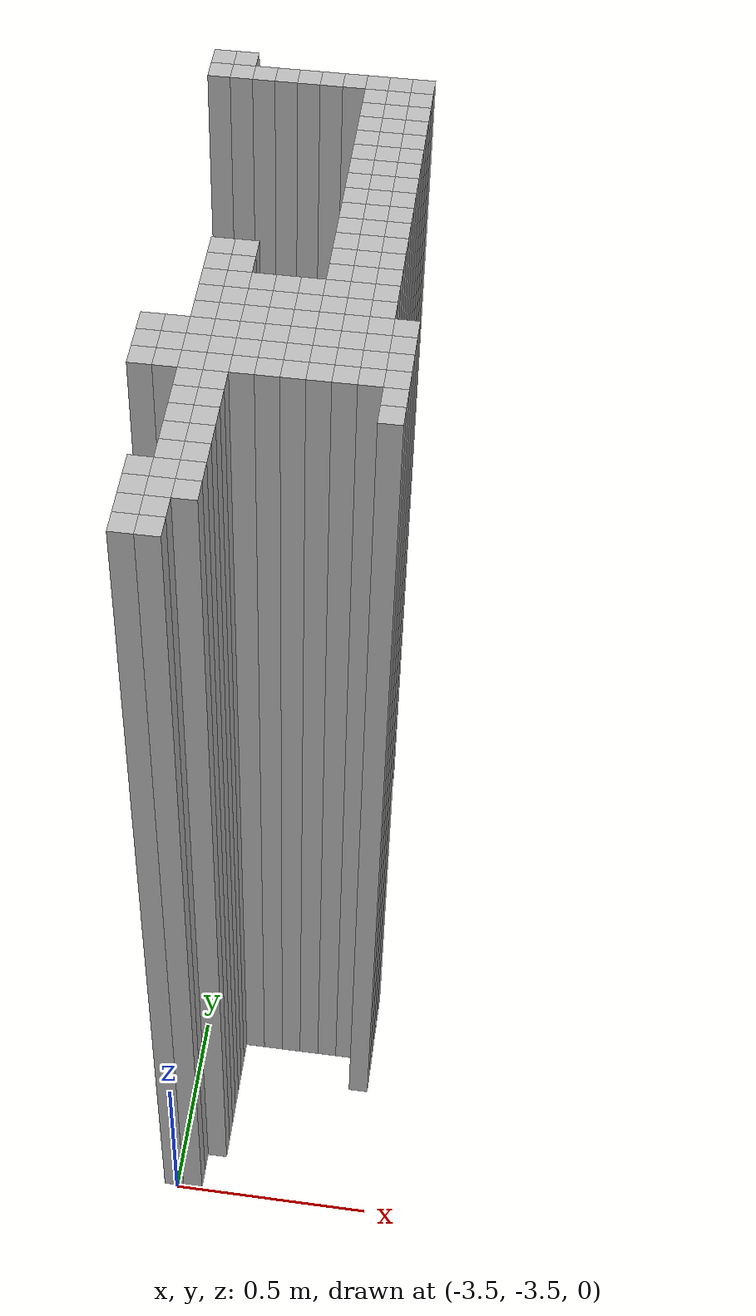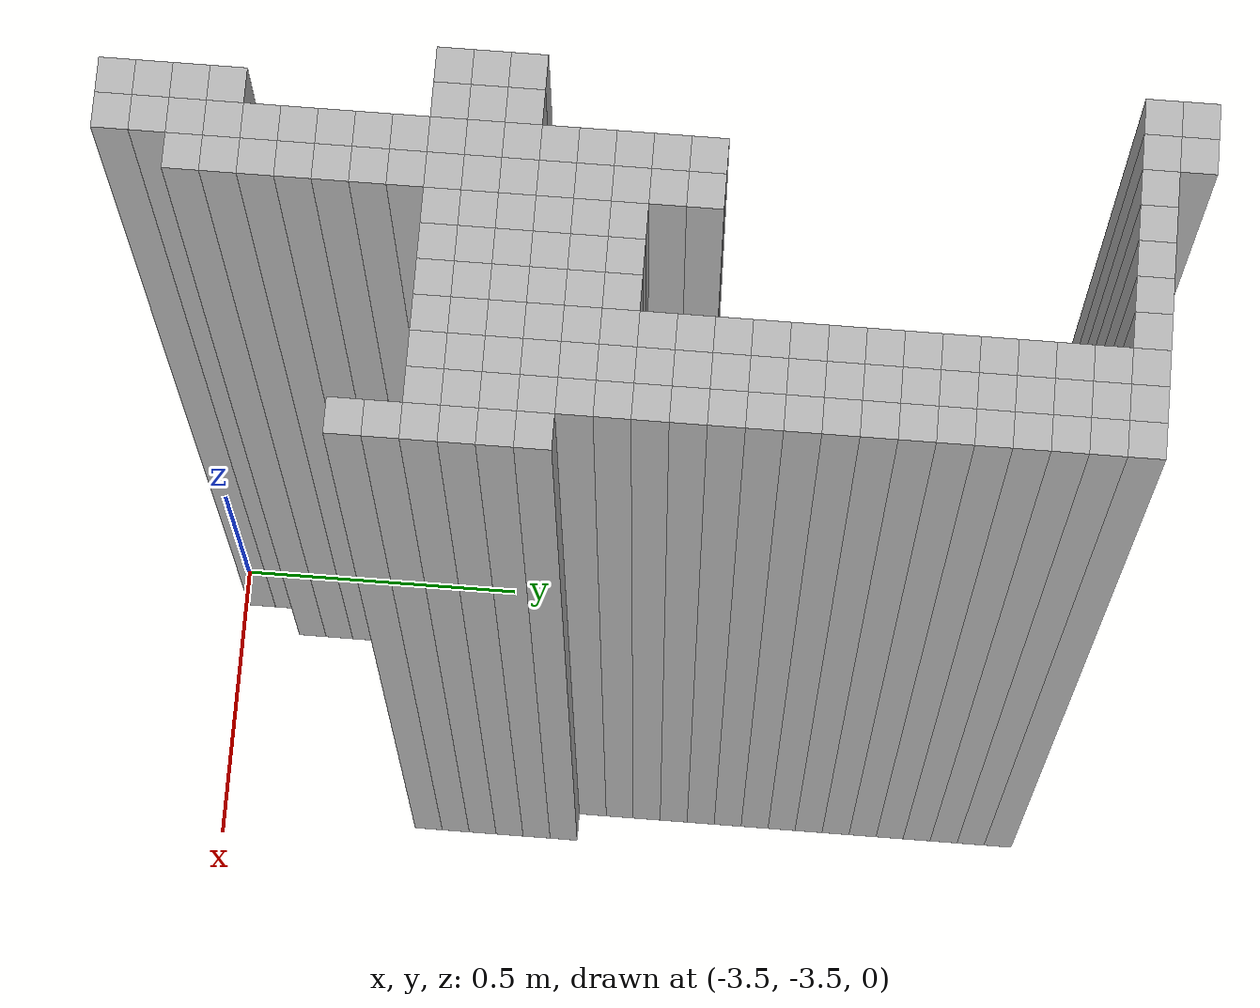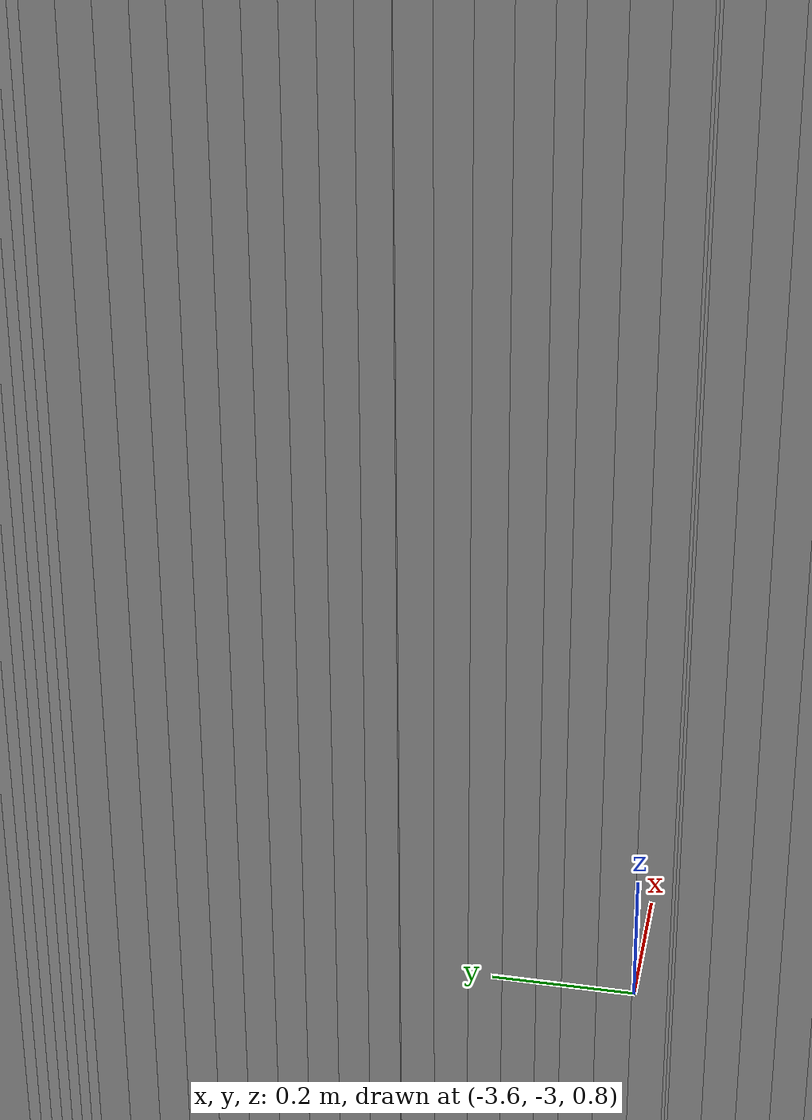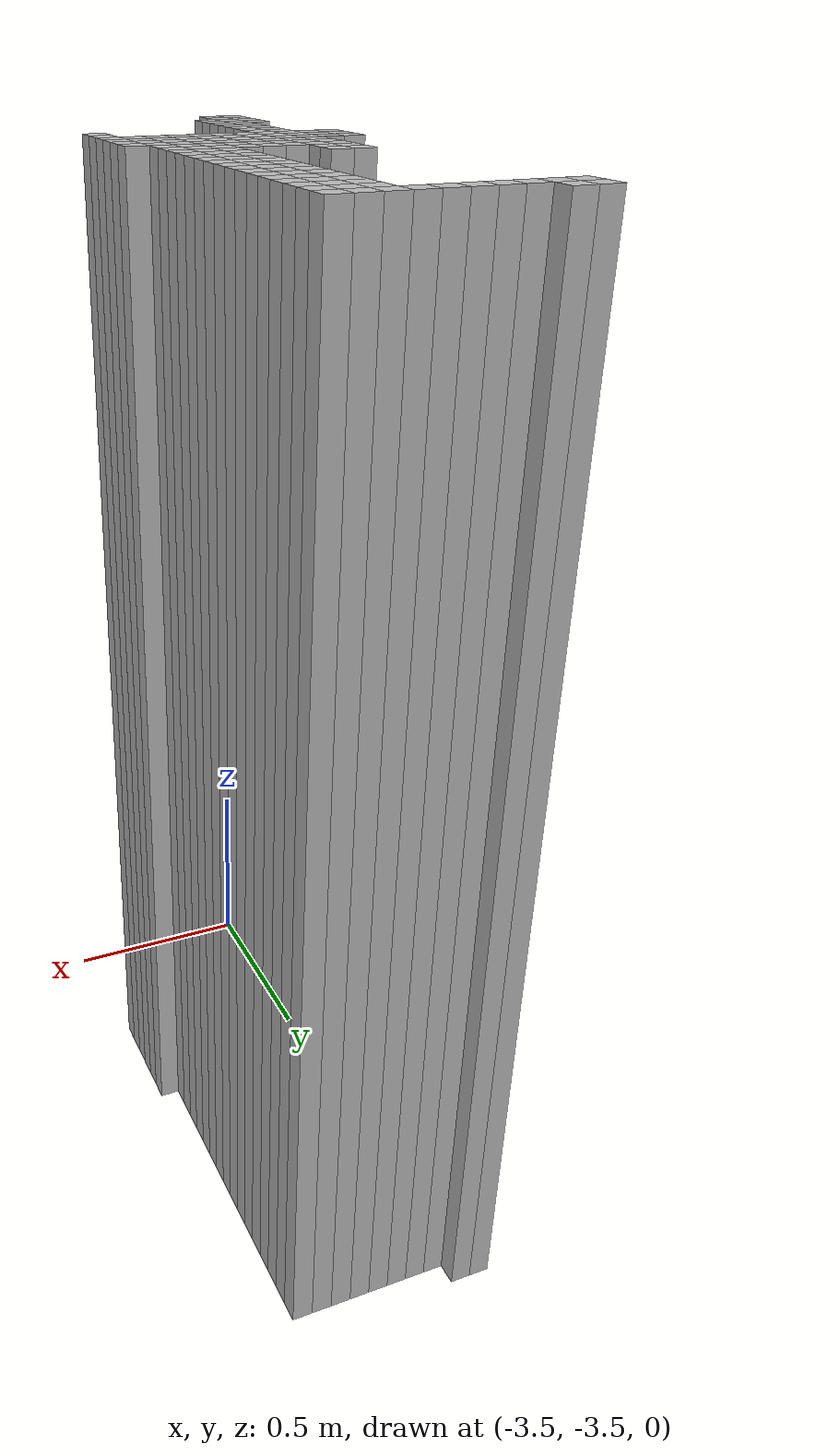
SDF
<sdf version="1.9">
 <world name="map_world">
  <model name="wall_152_194">
   <static>true</static>
   <pose>-3.561 -2.020 1.250 0 0 0</pose>
   <link name="link">
    <collision name="collision"><geometry><box><size>0.050 0.050 2.500</size></box></geometry></collision>
    <visual name="visual"><geometry><box><size>0.050 0.050 2.500</size></box></geometry></visual>
   </link>
  </model>
  <model name="wall_153_194">
   <static>true</static>
   <pose>-3.511 -2.020 1.250 0 0 0</pose>
   <link name="link">
    <collision name="collision"><geometry><box><size>0.050 0.050 2.500</size></box></geometry></collision>
    <visual name="visual"><geometry><box><size>0.050 0.050 2.500</size></box></geometry></visual>
   </link>
  </model>
  <model name="wall_152_195">
   <static>true</static>
   <pose>-3.561 -2.070 1.250 0 0 0</pose>
   <link name="link">
    <collision name="collision"><geometry><box><size>0.050 0.050 2.500</size></box></geometry></collision>
    <visual name="visual"><geometry><box><size>0.050 0.050 2.500</size></box></geometry></visual>
   </link>
  </model>
  <model name="wall_153_195">
   <static>true</static>
   <pose>-3.511 -2.070 1.250 0 0 0</pose>
   <link name="link">
    <collision name="collision"><geometry><box><size>0.050 0.050 2.500</size></box></geometry></collision>
    <visual name="visual"><geometry><box><size>0.050 0.050 2.500</size></box></geometry></visual>
   </link>
  </model>
  <model name="wall_154_195">
   <static>true</static>
   <pose>-3.461 -2.070 1.250 0 0 0</pose>
   <link name="link">
    <collision name="collision"><geometry><box><size>0.050 0.050 2.500</size></box></geometry></collision>
    <visual name="visual"><geometry><box><size>0.050 0.050 2.500</size></box></geometry></visual>
   </link>
  </model>
  <model name="wall_155_195">
   <static>true</static>
   <pose>-3.411 -2.070 1.250 0 0 0</pose>
   <link name="link">
    <collision name="collision"><geometry><box><size>0.050 0.050 2.500</size></box></geometry></collision>
    <visual name="visual"><geometry><box><size>0.050 0.050 2.500</size></box></geometry></visual>
   </link>
  </model>
  <model name="wall_156_195">
   <static>true</static>
   <pose>-3.361 -2.070 1.250 0 0 0</pose>
   <link name="link">
    <collision name="collision"><geometry><box><size>0.050 0.050 2.500</size></box></geometry></collision>
    <visual name="visual"><geometry><box><size>0.050 0.050 2.500</size></box></geometry></visual>
   </link>
  </model>
  <model name="wall_157_195">
   <static>true</static>
   <pose>-3.311 -2.070 1.250 0 0 0</pose>
   <link name="link">
    <collision name="collision"><geometry><box><size>0.050 0.050 2.500</size></box></geometry></collision>
    <visual name="visual"><geometry><box><size>0.050 0.050 2.500</size></box></geometry></visual>
   </link>
  </model>
  <model name="wall_158_195">
   <static>true</static>
   <pose>-3.261 -2.070 1.250 0 0 0</pose>
   <link name="link">
    <collision name="collision"><geometry><box><size>0.050 0.050 2.500</size></box></geometry></collision>
    <visual name="visual"><geometry><box><size>0.050 0.050 2.500</size></box></geometry></visual>
   </link>
  </model>
  <model name="wall_159_195">
   <static>true</static>
   <pose>-3.211 -2.070 1.250 0 0 0</pose>
   <link name="link">
    <collision name="collision"><geometry><box><size>0.050 0.050 2.500</size></box></geometry></collision>
    <visual name="visual"><geometry><box><size>0.050 0.050 2.500</size></box></geometry></visual>
   </link>
  </model>
  <model name="wall_160_195">
   <static>true</static>
   <pose>-3.161 -2.070 1.250 0 0 0</pose>
   <link name="link">
    <collision name="collision"><geometry><box><size>0.050 0.050 2.500</size></box></geometry></collision>
    <visual name="visual"><geometry><box><size>0.050 0.050 2.500</size></box></geometry></visual>
   </link>
  </model>
  <model name="wall_161_195">
   <static>true</static>
   <pose>-3.111 -2.070 1.250 0 0 0</pose>
   <link name="link">
    <collision name="collision"><geometry><box><size>0.050 0.050 2.500</size></box></geometry></collision>
    <visual name="visual"><geometry><box><size>0.050 0.050 2.500</size></box></geometry></visual>
   </link>
  </model>
  <model name="wall_159_196">
   <static>true</static>
   <pose>-3.211 -2.120 1.250 0 0 0</pose>
   <link name="link">
    <collision name="collision"><geometry><box><size>0.050 0.050 2.500</size></box></geometry></collision>
    <visual name="visual"><geometry><box><size>0.050 0.050 2.500</size></box></geometry></visual>
   </link>
  </model>
  <model name="wall_160_196">
   <static>true</static>
   <pose>-3.161 -2.120 1.250 0 0 0</pose>
   <link name="link">
    <collision name="collision"><geometry><box><size>0.050 0.050 2.500</size></box></geometry></collision>
    <visual name="visual"><geometry><box><size>0.050 0.050 2.500</size></box></geometry></visual>
   </link>
  </model>
  <model name="wall_161_196">
   <static>true</static>
   <pose>-3.111 -2.120 1.250 0 0 0</pose>
   <link name="link">
    <collision name="collision"><geometry><box><size>0.050 0.050 2.500</size></box></geometry></collision>
    <visual name="visual"><geometry><box><size>0.050 0.050 2.500</size></box></geometry></visual>
   </link>
  </model>
  <model name="wall_159_197">
   <static>true</static>
   <pose>-3.211 -2.170 1.250 0 0 0</pose>
   <link name="link">
    <collision name="collision"><geometry><box><size>0.050 0.050 2.500</size></box></geometry></collision>
    <visual name="visual"><geometry><box><size>0.050 0.050 2.500</size></box></geometry></visual>
   </link>
  </model>
  <model name="wall_160_197">
   <static>true</static>
   <pose>-3.161 -2.170 1.250 0 0 0</pose>
   <link name="link">
    <collision name="collision"><geometry><box><size>0.050 0.050 2.500</size></box></geometry></collision>
    <visual name="visual"><geometry><box><size>0.050 0.050 2.500</size></box></geometry></visual>
   </link>
  </model>
  <model name="wall_161_197">
   <static>true</static>
   <pose>-3.111 -2.170 1.250 0 0 0</pose>
   <link name="link">
    <collision name="collision"><geometry><box><size>0.050 0.050 2.500</size></box></geometry></collision>
    <visual name="visual"><geometry><box><size>0.050 0.050 2.500</size></box></geometry></visual>
   </link>
  </model>
  <model name="wall_159_198">
   <static>true</static>
   <pose>-3.211 -2.220 1.250 0 0 0</pose>
   <link name="link">
    <collision name="collision"><geometry><box><size>0.050 0.050 2.500</size></box></geometry></collision>
    <visual name="visual"><geometry><box><size>0.050 0.050 2.500</size></box></geometry></visual>
   </link>
  </model>
  <model name="wall_160_198">
   <static>true</static>
   <pose>-3.161 -2.220 1.250 0 0 0</pose>
   <link name="link">
    <collision name="collision"><geometry><box><size>0.050 0.050 2.500</size></box></geometry></collision>
    <visual name="visual"><geometry><box><size>0.050 0.050 2.500</size></box></geometry></visual>
   </link>
  </model>
  <model name="wall_161_198">
   <static>true</static>
   <pose>-3.111 -2.220 1.250 0 0 0</pose>
   <link name="link">
    <collision name="collision"><geometry><box><size>0.050 0.050 2.500</size></box></geometry></collision>
    <visual name="visual"><geometry><box><size>0.050 0.050 2.500</size></box></geometry></visual>
   </link>
  </model>
  <model name="wall_159_199">
   <static>true</static>
   <pose>-3.211 -2.270 1.250 0 0 0</pose>
   <link name="link">
    <collision name="collision"><geometry><box><size>0.050 0.050 2.500</size></box></geometry></collision>
    <visual name="visual"><geometry><box><size>0.050 0.050 2.500</size></box></geometry></visual>
   </link>
  </model>
  <model name="wall_160_199">
   <static>true</static>
   <pose>-3.161 -2.270 1.250 0 0 0</pose>
   <link name="link">
    <collision name="collision"><geometry><box><size>0.050 0.050 2.500</size></box></geometry></collision>
    <visual name="visual"><geometry><box><size>0.050 0.050 2.500</size></box></geometry></visual>
   </link>
  </model>
  <model name="wall_161_199">
   <static>true</static>
   <pose>-3.111 -2.270 1.250 0 0 0</pose>
   <link name="link">
    <collision name="collision"><geometry><box><size>0.050 0.050 2.500</size></box></geometry></collision>
    <visual name="visual"><geometry><box><size>0.050 0.050 2.500</size></box></geometry></visual>
   </link>
  </model>
  <model name="wall_159_200">
   <static>true</static>
   <pose>-3.211 -2.320 1.250 0 0 0</pose>
   <link name="link">
    <collision name="collision"><geometry><box><size>0.050 0.050 2.500</size></box></geometry></collision>
    <visual name="visual"><geometry><box><size>0.050 0.050 2.500</size></box></geometry></visual>
   </link>
  </model>
  <model name="wall_160_200">
   <static>true</static>
   <pose>-3.161 -2.320 1.250 0 0 0</pose>
   <link name="link">
    <collision name="collision"><geometry><box><size>0.050 0.050 2.500</size></box></geometry></collision>
    <visual name="visual"><geometry><box><size>0.050 0.050 2.500</size></box></geometry></visual>
   </link>
  </model>
  <model name="wall_161_200">
   <static>true</static>
   <pose>-3.111 -2.320 1.250 0 0 0</pose>
   <link name="link">
    <collision name="collision"><geometry><box><size>0.050 0.050 2.500</size></box></geometry></collision>
    <visual name="visual"><geometry><box><size>0.050 0.050 2.500</size></box></geometry></visual>
   </link>
  </model>
  <model name="wall_159_201">
   <static>true</static>
   <pose>-3.211 -2.370 1.250 0 0 0</pose>
   <link name="link">
    <collision name="collision"><geometry><box><size>0.050 0.050 2.500</size></box></geometry></collision>
    <visual name="visual"><geometry><box><size>0.050 0.050 2.500</size></box></geometry></visual>
   </link>
  </model>
  <model name="wall_160_201">
   <static>true</static>
   <pose>-3.161 -2.370 1.250 0 0 0</pose>
   <link name="link">
    <collision name="collision"><geometry><box><size>0.050 0.050 2.500</size></box></geometry></collision>
    <visual name="visual"><geometry><box><size>0.050 0.050 2.500</size></box></geometry></visual>
   </link>
  </model>
  <model name="wall_161_201">
   <static>true</static>
   <pose>-3.111 -2.370 1.250 0 0 0</pose>
   <link name="link">
    <collision name="collision"><geometry><box><size>0.050 0.050 2.500</size></box></geometry></collision>
    <visual name="visual"><geometry><box><size>0.050 0.050 2.500</size></box></geometry></visual>
   </link>
  </model>
  <model name="wall_159_202">
   <static>true</static>
   <pose>-3.211 -2.420 1.250 0 0 0</pose>
   <link name="link">
    <collision name="collision"><geometry><box><size>0.050 0.050 2.500</size></box></geometry></collision>
    <visual name="visual"><geometry><box><size>0.050 0.050 2.500</size></box></geometry></visual>
   </link>
  </model>
  <model name="wall_160_202">
   <static>true</static>
   <pose>-3.161 -2.420 1.250 0 0 0</pose>
   <link name="link">
    <collision name="collision"><geometry><box><size>0.050 0.050 2.500</size></box></geometry></collision>
    <visual name="visual"><geometry><box><size>0.050 0.050 2.500</size></box></geometry></visual>
   </link>
  </model>
  <model name="wall_161_202">
   <static>true</static>
   <pose>-3.111 -2.420 1.250 0 0 0</pose>
   <link name="link">
    <collision name="collision"><geometry><box><size>0.050 0.050 2.500</size></box></geometry></collision>
    <visual name="visual"><geometry><box><size>0.050 0.050 2.500</size></box></geometry></visual>
   </link>
  </model>
  <model name="wall_159_203">
   <static>true</static>
   <pose>-3.211 -2.470 1.250 0 0 0</pose>
   <link name="link">
    <collision name="collision"><geometry><box><size>0.050 0.050 2.500</size></box></geometry></collision>
    <visual name="visual"><geometry><box><size>0.050 0.050 2.500</size></box></geometry></visual>
   </link>
  </model>
  <model name="wall_160_203">
   <static>true</static>
   <pose>-3.161 -2.470 1.250 0 0 0</pose>
   <link name="link">
    <collision name="collision"><geometry><box><size>0.050 0.050 2.500</size></box></geometry></collision>
    <visual name="visual"><geometry><box><size>0.050 0.050 2.500</size></box></geometry></visual>
   </link>
  </model>
  <model name="wall_161_203">
   <static>true</static>
   <pose>-3.111 -2.470 1.250 0 0 0</pose>
   <link name="link">
    <collision name="collision"><geometry><box><size>0.050 0.050 2.500</size></box></geometry></collision>
    <visual name="visual"><geometry><box><size>0.050 0.050 2.500</size></box></geometry></visual>
   </link>
  </model>
  <model name="wall_159_204">
   <static>true</static>
   <pose>-3.211 -2.520 1.250 0 0 0</pose>
   <link name="link">
    <collision name="collision"><geometry><box><size>0.050 0.050 2.500</size></box></geometry></collision>
    <visual name="visual"><geometry><box><size>0.050 0.050 2.500</size></box></geometry></visual>
   </link>
  </model>
  <model name="wall_160_204">
   <static>true</static>
   <pose>-3.161 -2.520 1.250 0 0 0</pose>
   <link name="link">
    <collision name="collision"><geometry><box><size>0.050 0.050 2.500</size></box></geometry></collision>
    <visual name="visual"><geometry><box><size>0.050 0.050 2.500</size></box></geometry></visual>
   </link>
  </model>
  <model name="wall_161_204">
   <static>true</static>
   <pose>-3.111 -2.520 1.250 0 0 0</pose>
   <link name="link">
    <collision name="collision"><geometry><box><size>0.050 0.050 2.500</size></box></geometry></collision>
    <visual name="visual"><geometry><box><size>0.050 0.050 2.500</size></box></geometry></visual>
   </link>
  </model>
  <model name="wall_159_205">
   <static>true</static>
   <pose>-3.211 -2.570 1.250 0 0 0</pose>
   <link name="link">
    <collision name="collision"><geometry><box><size>0.050 0.050 2.500</size></box></geometry></collision>
    <visual name="visual"><geometry><box><size>0.050 0.050 2.500</size></box></geometry></visual>
   </link>
  </model>
  <model name="wall_160_205">
   <static>true</static>
   <pose>-3.161 -2.570 1.250 0 0 0</pose>
   <link name="link">
    <collision name="collision"><geometry><box><size>0.050 0.050 2.500</size></box></geometry></collision>
    <visual name="visual"><geometry><box><size>0.050 0.050 2.500</size></box></geometry></visual>
   </link>
  </model>
  <model name="wall_161_205">
   <static>true</static>
   <pose>-3.111 -2.570 1.250 0 0 0</pose>
   <link name="link">
    <collision name="collision"><geometry><box><size>0.050 0.050 2.500</size></box></geometry></collision>
    <visual name="visual"><geometry><box><size>0.050 0.050 2.500</size></box></geometry></visual>
   </link>
  </model>
  <model name="wall_159_206">
   <static>true</static>
   <pose>-3.211 -2.620 1.250 0 0 0</pose>
   <link name="link">
    <collision name="collision"><geometry><box><size>0.050 0.050 2.500</size></box></geometry></collision>
    <visual name="visual"><geometry><box><size>0.050 0.050 2.500</size></box></geometry></visual>
   </link>
  </model>
  <model name="wall_160_206">
   <static>true</static>
   <pose>-3.161 -2.620 1.250 0 0 0</pose>
   <link name="link">
    <collision name="collision"><geometry><box><size>0.050 0.050 2.500</size></box></geometry></collision>
    <visual name="visual"><geometry><box><size>0.050 0.050 2.500</size></box></geometry></visual>
   </link>
  </model>
  <model name="wall_161_206">
   <static>true</static>
   <pose>-3.111 -2.620 1.250 0 0 0</pose>
   <link name="link">
    <collision name="collision"><geometry><box><size>0.050 0.050 2.500</size></box></geometry></collision>
    <visual name="visual"><geometry><box><size>0.050 0.050 2.500</size></box></geometry></visual>
   </link>
  </model>
  <model name="wall_154_207">
   <static>true</static>
   <pose>-3.461 -2.670 1.250 0 0 0</pose>
   <link name="link">
    <collision name="collision"><geometry><box><size>0.050 0.050 2.500</size></box></geometry></collision>
    <visual name="visual"><geometry><box><size>0.050 0.050 2.500</size></box></geometry></visual>
   </link>
  </model>
  <model name="wall_155_207">
   <static>true</static>
   <pose>-3.411 -2.670 1.250 0 0 0</pose>
   <link name="link">
    <collision name="collision"><geometry><box><size>0.050 0.050 2.500</size></box></geometry></collision>
    <visual name="visual"><geometry><box><size>0.050 0.050 2.500</size></box></geometry></visual>
   </link>
  </model>
  <model name="wall_159_207">
   <static>true</static>
   <pose>-3.211 -2.670 1.250 0 0 0</pose>
   <link name="link">
    <collision name="collision"><geometry><box><size>0.050 0.050 2.500</size></box></geometry></collision>
    <visual name="visual"><geometry><box><size>0.050 0.050 2.500</size></box></geometry></visual>
   </link>
  </model>
  <model name="wall_160_207">
   <static>true</static>
   <pose>-3.161 -2.670 1.250 0 0 0</pose>
   <link name="link">
    <collision name="collision"><geometry><box><size>0.050 0.050 2.500</size></box></geometry></collision>
    <visual name="visual"><geometry><box><size>0.050 0.050 2.500</size></box></geometry></visual>
   </link>
  </model>
  <model name="wall_161_207">
   <static>true</static>
   <pose>-3.111 -2.670 1.250 0 0 0</pose>
   <link name="link">
    <collision name="collision"><geometry><box><size>0.050 0.050 2.500</size></box></geometry></collision>
    <visual name="visual"><geometry><box><size>0.050 0.050 2.500</size></box></geometry></visual>
   </link>
  </model>
  <model name="wall_154_208">
   <static>true</static>
   <pose>-3.461 -2.720 1.250 0 0 0</pose>
   <link name="link">
    <collision name="collision"><geometry><box><size>0.050 0.050 2.500</size></box></geometry></collision>
    <visual name="visual"><geometry><box><size>0.050 0.050 2.500</size></box></geometry></visual>
   </link>
  </model>
  <model name="wall_155_208">
   <static>true</static>
   <pose>-3.411 -2.720 1.250 0 0 0</pose>
   <link name="link">
    <collision name="collision"><geometry><box><size>0.050 0.050 2.500</size></box></geometry></collision>
    <visual name="visual"><geometry><box><size>0.050 0.050 2.500</size></box></geometry></visual>
   </link>
  </model>
  <model name="wall_159_208">
   <static>true</static>
   <pose>-3.211 -2.720 1.250 0 0 0</pose>
   <link name="link">
    <collision name="collision"><geometry><box><size>0.050 0.050 2.500</size></box></geometry></collision>
    <visual name="visual"><geometry><box><size>0.050 0.050 2.500</size></box></geometry></visual>
   </link>
  </model>
  <model name="wall_160_208">
   <static>true</static>
   <pose>-3.161 -2.720 1.250 0 0 0</pose>
   <link name="link">
    <collision name="collision"><geometry><box><size>0.050 0.050 2.500</size></box></geometry></collision>
    <visual name="visual"><geometry><box><size>0.050 0.050 2.500</size></box></geometry></visual>
   </link>
  </model>
  <model name="wall_161_208">
   <static>true</static>
   <pose>-3.111 -2.720 1.250 0 0 0</pose>
   <link name="link">
    <collision name="collision"><geometry><box><size>0.050 0.050 2.500</size></box></geometry></collision>
    <visual name="visual"><geometry><box><size>0.050 0.050 2.500</size></box></geometry></visual>
   </link>
  </model>
  <model name="wall_154_209">
   <static>true</static>
   <pose>-3.461 -2.770 1.250 0 0 0</pose>
   <link name="link">
    <collision name="collision"><geometry><box><size>0.050 0.050 2.500</size></box></geometry></collision>
    <visual name="visual"><geometry><box><size>0.050 0.050 2.500</size></box></geometry></visual>
   </link>
  </model>
  <model name="wall_155_209">
   <static>true</static>
   <pose>-3.411 -2.770 1.250 0 0 0</pose>
   <link name="link">
    <collision name="collision"><geometry><box><size>0.050 0.050 2.500</size></box></geometry></collision>
    <visual name="visual"><geometry><box><size>0.050 0.050 2.500</size></box></geometry></visual>
   </link>
  </model>
  <model name="wall_156_209">
   <static>true</static>
   <pose>-3.361 -2.770 1.250 0 0 0</pose>
   <link name="link">
    <collision name="collision"><geometry><box><size>0.050 0.050 2.500</size></box></geometry></collision>
    <visual name="visual"><geometry><box><size>0.050 0.050 2.500</size></box></geometry></visual>
   </link>
  </model>
  <model name="wall_157_209">
   <static>true</static>
   <pose>-3.311 -2.770 1.250 0 0 0</pose>
   <link name="link">
    <collision name="collision"><geometry><box><size>0.050 0.050 2.500</size></box></geometry></collision>
    <visual name="visual"><geometry><box><size>0.050 0.050 2.500</size></box></geometry></visual>
   </link>
  </model>
  <model name="wall_158_209">
   <static>true</static>
   <pose>-3.261 -2.770 1.250 0 0 0</pose>
   <link name="link">
    <collision name="collision"><geometry><box><size>0.050 0.050 2.500</size></box></geometry></collision>
    <visual name="visual"><geometry><box><size>0.050 0.050 2.500</size></box></geometry></visual>
   </link>
  </model>
  <model name="wall_159_209">
   <static>true</static>
   <pose>-3.211 -2.770 1.250 0 0 0</pose>
   <link name="link">
    <collision name="collision"><geometry><box><size>0.050 0.050 2.500</size></box></geometry></collision>
    <visual name="visual"><geometry><box><size>0.050 0.050 2.500</size></box></geometry></visual>
   </link>
  </model>
  <model name="wall_160_209">
   <static>true</static>
   <pose>-3.161 -2.770 1.250 0 0 0</pose>
   <link name="link">
    <collision name="collision"><geometry><box><size>0.050 0.050 2.500</size></box></geometry></collision>
    <visual name="visual"><geometry><box><size>0.050 0.050 2.500</size></box></geometry></visual>
   </link>
  </model>
  <model name="wall_161_209">
   <static>true</static>
   <pose>-3.111 -2.770 1.250 0 0 0</pose>
   <link name="link">
    <collision name="collision"><geometry><box><size>0.050 0.050 2.500</size></box></geometry></collision>
    <visual name="visual"><geometry><box><size>0.050 0.050 2.500</size></box></geometry></visual>
   </link>
  </model>
  <model name="wall_154_210">
   <static>true</static>
   <pose>-3.461 -2.820 1.250 0 0 0</pose>
   <link name="link">
    <collision name="collision"><geometry><box><size>0.050 0.050 2.500</size></box></geometry></collision>
    <visual name="visual"><geometry><box><size>0.050 0.050 2.500</size></box></geometry></visual>
   </link>
  </model>
  <model name="wall_155_210">
   <static>true</static>
   <pose>-3.411 -2.820 1.250 0 0 0</pose>
   <link name="link">
    <collision name="collision"><geometry><box><size>0.050 0.050 2.500</size></box></geometry></collision>
    <visual name="visual"><geometry><box><size>0.050 0.050 2.500</size></box></geometry></visual>
   </link>
  </model>
  <model name="wall_156_210">
   <static>true</static>
   <pose>-3.361 -2.820 1.250 0 0 0</pose>
   <link name="link">
    <collision name="collision"><geometry><box><size>0.050 0.050 2.500</size></box></geometry></collision>
    <visual name="visual"><geometry><box><size>0.050 0.050 2.500</size></box></geometry></visual>
   </link>
  </model>
  <model name="wall_157_210">
   <static>true</static>
   <pose>-3.311 -2.820 1.250 0 0 0</pose>
   <link name="link">
    <collision name="collision"><geometry><box><size>0.050 0.050 2.500</size></box></geometry></collision>
    <visual name="visual"><geometry><box><size>0.050 0.050 2.500</size></box></geometry></visual>
   </link>
  </model>
  <model name="wall_158_210">
   <static>true</static>
   <pose>-3.261 -2.820 1.250 0 0 0</pose>
   <link name="link">
    <collision name="collision"><geometry><box><size>0.050 0.050 2.500</size></box></geometry></collision>
    <visual name="visual"><geometry><box><size>0.050 0.050 2.500</size></box></geometry></visual>
   </link>
  </model>
  <model name="wall_159_210">
   <static>true</static>
   <pose>-3.211 -2.820 1.250 0 0 0</pose>
   <link name="link">
    <collision name="collision"><geometry><box><size>0.050 0.050 2.500</size></box></geometry></collision>
    <visual name="visual"><geometry><box><size>0.050 0.050 2.500</size></box></geometry></visual>
   </link>
  </model>
  <model name="wall_160_210">
   <static>true</static>
   <pose>-3.161 -2.820 1.250 0 0 0</pose>
   <link name="link">
    <collision name="collision"><geometry><box><size>0.050 0.050 2.500</size></box></geometry></collision>
    <visual name="visual"><geometry><box><size>0.050 0.050 2.500</size></box></geometry></visual>
   </link>
  </model>
  <model name="wall_161_210">
   <static>true</static>
   <pose>-3.111 -2.820 1.250 0 0 0</pose>
   <link name="link">
    <collision name="collision"><geometry><box><size>0.050 0.050 2.500</size></box></geometry></collision>
    <visual name="visual"><geometry><box><size>0.050 0.050 2.500</size></box></geometry></visual>
   </link>
  </model>
  <model name="wall_154_211">
   <static>true</static>
   <pose>-3.461 -2.870 1.250 0 0 0</pose>
   <link name="link">
    <collision name="collision"><geometry><box><size>0.050 0.050 2.500</size></box></geometry></collision>
    <visual name="visual"><geometry><box><size>0.050 0.050 2.500</size></box></geometry></visual>
   </link>
  </model>
  <model name="wall_155_211">
   <static>true</static>
   <pose>-3.411 -2.870 1.250 0 0 0</pose>
   <link name="link">
    <collision name="collision"><geometry><box><size>0.050 0.050 2.500</size></box></geometry></collision>
    <visual name="visual"><geometry><box><size>0.050 0.050 2.500</size></box></geometry></visual>
   </link>
  </model>
  <model name="wall_156_211">
   <static>true</static>
   <pose>-3.361 -2.870 1.250 0 0 0</pose>
   <link name="link">
    <collision name="collision"><geometry><box><size>0.050 0.050 2.500</size></box></geometry></collision>
    <visual name="visual"><geometry><box><size>0.050 0.050 2.500</size></box></geometry></visual>
   </link>
  </model>
  <model name="wall_157_211">
   <static>true</static>
   <pose>-3.311 -2.870 1.250 0 0 0</pose>
   <link name="link">
    <collision name="collision"><geometry><box><size>0.050 0.050 2.500</size></box></geometry></collision>
    <visual name="visual"><geometry><box><size>0.050 0.050 2.500</size></box></geometry></visual>
   </link>
  </model>
  <model name="wall_158_211">
   <static>true</static>
   <pose>-3.261 -2.870 1.250 0 0 0</pose>
   <link name="link">
    <collision name="collision"><geometry><box><size>0.050 0.050 2.500</size></box></geometry></collision>
    <visual name="visual"><geometry><box><size>0.050 0.050 2.500</size></box></geometry></visual>
   </link>
  </model>
  <model name="wall_159_211">
   <static>true</static>
   <pose>-3.211 -2.870 1.250 0 0 0</pose>
   <link name="link">
    <collision name="collision"><geometry><box><size>0.050 0.050 2.500</size></box></geometry></collision>
    <visual name="visual"><geometry><box><size>0.050 0.050 2.500</size></box></geometry></visual>
   </link>
  </model>
  <model name="wall_160_211">
   <static>true</static>
   <pose>-3.161 -2.870 1.250 0 0 0</pose>
   <link name="link">
    <collision name="collision"><geometry><box><size>0.050 0.050 2.500</size></box></geometry></collision>
    <visual name="visual"><geometry><box><size>0.050 0.050 2.500</size></box></geometry></visual>
   </link>
  </model>
  <model name="wall_161_211">
   <static>true</static>
   <pose>-3.111 -2.870 1.250 0 0 0</pose>
   <link name="link">
    <collision name="collision"><geometry><box><size>0.050 0.050 2.500</size></box></geometry></collision>
    <visual name="visual"><geometry><box><size>0.050 0.050 2.500</size></box></geometry></visual>
   </link>
  </model>
  <model name="wall_162_211">
   <static>true</static>
   <pose>-3.061 -2.870 1.250 0 0 0</pose>
   <link name="link">
    <collision name="collision"><geometry><box><size>0.050 0.050 2.500</size></box></geometry></collision>
    <visual name="visual"><geometry><box><size>0.050 0.050 2.500</size></box></geometry></visual>
   </link>
  </model>
  <model name="wall_152_212">
   <static>true</static>
   <pose>-3.561 -2.920 1.250 0 0 0</pose>
   <link name="link">
    <collision name="collision"><geometry><box><size>0.050 0.050 2.500</size></box></geometry></collision>
    <visual name="visual"><geometry><box><size>0.050 0.050 2.500</size></box></geometry></visual>
   </link>
  </model>
  <model name="wall_153_212">
   <static>true</static>
   <pose>-3.511 -2.920 1.250 0 0 0</pose>
   <link name="link">
    <collision name="collision"><geometry><box><size>0.050 0.050 2.500</size></box></geometry></collision>
    <visual name="visual"><geometry><box><size>0.050 0.050 2.500</size></box></geometry></visual>
   </link>
  </model>
  <model name="wall_154_212">
   <static>true</static>
   <pose>-3.461 -2.920 1.250 0 0 0</pose>
   <link name="link">
    <collision name="collision"><geometry><box><size>0.050 0.050 2.500</size></box></geometry></collision>
    <visual name="visual"><geometry><box><size>0.050 0.050 2.500</size></box></geometry></visual>
   </link>
  </model>
  <model name="wall_155_212">
   <static>true</static>
   <pose>-3.411 -2.920 1.250 0 0 0</pose>
   <link name="link">
    <collision name="collision"><geometry><box><size>0.050 0.050 2.500</size></box></geometry></collision>
    <visual name="visual"><geometry><box><size>0.050 0.050 2.500</size></box></geometry></visual>
   </link>
  </model>
  <model name="wall_156_212">
   <static>true</static>
   <pose>-3.361 -2.920 1.250 0 0 0</pose>
   <link name="link">
    <collision name="collision"><geometry><box><size>0.050 0.050 2.500</size></box></geometry></collision>
    <visual name="visual"><geometry><box><size>0.050 0.050 2.500</size></box></geometry></visual>
   </link>
  </model>
  <model name="wall_157_212">
   <static>true</static>
   <pose>-3.311 -2.920 1.250 0 0 0</pose>
   <link name="link">
    <collision name="collision"><geometry><box><size>0.050 0.050 2.500</size></box></geometry></collision>
    <visual name="visual"><geometry><box><size>0.050 0.050 2.500</size></box></geometry></visual>
   </link>
  </model>
  <model name="wall_158_212">
   <static>true</static>
   <pose>-3.261 -2.920 1.250 0 0 0</pose>
   <link name="link">
    <collision name="collision"><geometry><box><size>0.050 0.050 2.500</size></box></geometry></collision>
    <visual name="visual"><geometry><box><size>0.050 0.050 2.500</size></box></geometry></visual>
   </link>
  </model>
  <model name="wall_159_212">
   <static>true</static>
   <pose>-3.211 -2.920 1.250 0 0 0</pose>
   <link name="link">
    <collision name="collision"><geometry><box><size>0.050 0.050 2.500</size></box></geometry></collision>
    <visual name="visual"><geometry><box><size>0.050 0.050 2.500</size></box></geometry></visual>
   </link>
  </model>
  <model name="wall_160_212">
   <static>true</static>
   <pose>-3.161 -2.920 1.250 0 0 0</pose>
   <link name="link">
    <collision name="collision"><geometry><box><size>0.050 0.050 2.500</size></box></geometry></collision>
    <visual name="visual"><geometry><box><size>0.050 0.050 2.500</size></box></geometry></visual>
   </link>
  </model>
  <model name="wall_161_212">
   <static>true</static>
   <pose>-3.111 -2.920 1.250 0 0 0</pose>
   <link name="link">
    <collision name="collision"><geometry><box><size>0.050 0.050 2.500</size></box></geometry></collision>
    <visual name="visual"><geometry><box><size>0.050 0.050 2.500</size></box></geometry></visual>
   </link>
  </model>
  <model name="wall_162_212">
   <static>true</static>
   <pose>-3.061 -2.920 1.250 0 0 0</pose>
   <link name="link">
    <collision name="collision"><geometry><box><size>0.050 0.050 2.500</size></box></geometry></collision>
    <visual name="visual"><geometry><box><size>0.050 0.050 2.500</size></box></geometry></visual>
   </link>
  </model>
  <model name="wall_152_213">
   <static>true</static>
   <pose>-3.561 -2.970 1.250 0 0 0</pose>
   <link name="link">
    <collision name="collision"><geometry><box><size>0.050 0.050 2.500</size></box></geometry></collision>
    <visual name="visual"><geometry><box><size>0.050 0.050 2.500</size></box></geometry></visual>
   </link>
  </model>
  <model name="wall_153_213">
   <static>true</static>
   <pose>-3.511 -2.970 1.250 0 0 0</pose>
   <link name="link">
    <collision name="collision"><geometry><box><size>0.050 0.050 2.500</size></box></geometry></collision>
    <visual name="visual"><geometry><box><size>0.050 0.050 2.500</size></box></geometry></visual>
   </link>
  </model>
  <model name="wall_154_213">
   <static>true</static>
   <pose>-3.461 -2.970 1.250 0 0 0</pose>
   <link name="link">
    <collision name="collision"><geometry><box><size>0.050 0.050 2.500</size></box></geometry></collision>
    <visual name="visual"><geometry><box><size>0.050 0.050 2.500</size></box></geometry></visual>
   </link>
  </model>
  <model name="wall_155_213">
   <static>true</static>
   <pose>-3.411 -2.970 1.250 0 0 0</pose>
   <link name="link">
    <collision name="collision"><geometry><box><size>0.050 0.050 2.500</size></box></geometry></collision>
    <visual name="visual"><geometry><box><size>0.050 0.050 2.500</size></box></geometry></visual>
   </link>
  </model>
  <model name="wall_156_213">
   <static>true</static>
   <pose>-3.361 -2.970 1.250 0 0 0</pose>
   <link name="link">
    <collision name="collision"><geometry><box><size>0.050 0.050 2.500</size></box></geometry></collision>
    <visual name="visual"><geometry><box><size>0.050 0.050 2.500</size></box></geometry></visual>
   </link>
  </model>
  <model name="wall_157_213">
   <static>true</static>
   <pose>-3.311 -2.970 1.250 0 0 0</pose>
   <link name="link">
    <collision name="collision"><geometry><box><size>0.050 0.050 2.500</size></box></geometry></collision>
    <visual name="visual"><geometry><box><size>0.050 0.050 2.500</size></box></geometry></visual>
   </link>
  </model>
  <model name="wall_158_213">
   <static>true</static>
   <pose>-3.261 -2.970 1.250 0 0 0</pose>
   <link name="link">
    <collision name="collision"><geometry><box><size>0.050 0.050 2.500</size></box></geometry></collision>
    <visual name="visual"><geometry><box><size>0.050 0.050 2.500</size></box></geometry></visual>
   </link>
  </model>
  <model name="wall_159_213">
   <static>true</static>
   <pose>-3.211 -2.970 1.250 0 0 0</pose>
   <link name="link">
    <collision name="collision"><geometry><box><size>0.050 0.050 2.500</size></box></geometry></collision>
    <visual name="visual"><geometry><box><size>0.050 0.050 2.500</size></box></geometry></visual>
   </link>
  </model>
  <model name="wall_160_213">
   <static>true</static>
   <pose>-3.161 -2.970 1.250 0 0 0</pose>
   <link name="link">
    <collision name="collision"><geometry><box><size>0.050 0.050 2.500</size></box></geometry></collision>
    <visual name="visual"><geometry><box><size>0.050 0.050 2.500</size></box></geometry></visual>
   </link>
  </model>
  <model name="wall_161_213">
   <static>true</static>
   <pose>-3.111 -2.970 1.250 0 0 0</pose>
   <link name="link">
    <collision name="collision"><geometry><box><size>0.050 0.050 2.500</size></box></geometry></collision>
    <visual name="visual"><geometry><box><size>0.050 0.050 2.500</size></box></geometry></visual>
   </link>
  </model>
  <model name="wall_162_213">
   <static>true</static>
   <pose>-3.061 -2.970 1.250 0 0 0</pose>
   <link name="link">
    <collision name="collision"><geometry><box><size>0.050 0.050 2.500</size></box></geometry></collision>
    <visual name="visual"><geometry><box><size>0.050 0.050 2.500</size></box></geometry></visual>
   </link>
  </model>
  <model name="wall_152_214">
   <static>true</static>
   <pose>-3.561 -3.020 1.250 0 0 0</pose>
   <link name="link">
    <collision name="collision"><geometry><box><size>0.050 0.050 2.500</size></box></geometry></collision>
    <visual name="visual"><geometry><box><size>0.050 0.050 2.500</size></box></geometry></visual>
   </link>
  </model>
  <model name="wall_153_214">
   <static>true</static>
   <pose>-3.511 -3.020 1.250 0 0 0</pose>
   <link name="link">
    <collision name="collision"><geometry><box><size>0.050 0.050 2.500</size></box></geometry></collision>
    <visual name="visual"><geometry><box><size>0.050 0.050 2.500</size></box></geometry></visual>
   </link>
  </model>
  <model name="wall_154_214">
   <static>true</static>
   <pose>-3.461 -3.020 1.250 0 0 0</pose>
   <link name="link">
    <collision name="collision"><geometry><box><size>0.050 0.050 2.500</size></box></geometry></collision>
    <visual name="visual"><geometry><box><size>0.050 0.050 2.500</size></box></geometry></visual>
   </link>
  </model>
  <model name="wall_155_214">
   <static>true</static>
   <pose>-3.411 -3.020 1.250 0 0 0</pose>
   <link name="link">
    <collision name="collision"><geometry><box><size>0.050 0.050 2.500</size></box></geometry></collision>
    <visual name="visual"><geometry><box><size>0.050 0.050 2.500</size></box></geometry></visual>
   </link>
  </model>
  <model name="wall_156_214">
   <static>true</static>
   <pose>-3.361 -3.020 1.250 0 0 0</pose>
   <link name="link">
    <collision name="collision"><geometry><box><size>0.050 0.050 2.500</size></box></geometry></collision>
    <visual name="visual"><geometry><box><size>0.050 0.050 2.500</size></box></geometry></visual>
   </link>
  </model>
  <model name="wall_157_214">
   <static>true</static>
   <pose>-3.311 -3.020 1.250 0 0 0</pose>
   <link name="link">
    <collision name="collision"><geometry><box><size>0.050 0.050 2.500</size></box></geometry></collision>
    <visual name="visual"><geometry><box><size>0.050 0.050 2.500</size></box></geometry></visual>
   </link>
  </model>
  <model name="wall_158_214">
   <static>true</static>
   <pose>-3.261 -3.020 1.250 0 0 0</pose>
   <link name="link">
    <collision name="collision"><geometry><box><size>0.050 0.050 2.500</size></box></geometry></collision>
    <visual name="visual"><geometry><box><size>0.050 0.050 2.500</size></box></geometry></visual>
   </link>
  </model>
  <model name="wall_159_214">
   <static>true</static>
   <pose>-3.211 -3.020 1.250 0 0 0</pose>
   <link name="link">
    <collision name="collision"><geometry><box><size>0.050 0.050 2.500</size></box></geometry></collision>
    <visual name="visual"><geometry><box><size>0.050 0.050 2.500</size></box></geometry></visual>
   </link>
  </model>
  <model name="wall_160_214">
   <static>true</static>
   <pose>-3.161 -3.020 1.250 0 0 0</pose>
   <link name="link">
    <collision name="collision"><geometry><box><size>0.050 0.050 2.500</size></box></geometry></collision>
    <visual name="visual"><geometry><box><size>0.050 0.050 2.500</size></box></geometry></visual>
   </link>
  </model>
  <model name="wall_161_214">
   <static>true</static>
   <pose>-3.111 -3.020 1.250 0 0 0</pose>
   <link name="link">
    <collision name="collision"><geometry><box><size>0.050 0.050 2.500</size></box></geometry></collision>
    <visual name="visual"><geometry><box><size>0.050 0.050 2.500</size></box></geometry></visual>
   </link>
  </model>
  <model name="wall_162_214">
   <static>true</static>
   <pose>-3.061 -3.020 1.250 0 0 0</pose>
   <link name="link">
    <collision name="collision"><geometry><box><size>0.050 0.050 2.500</size></box></geometry></collision>
    <visual name="visual"><geometry><box><size>0.050 0.050 2.500</size></box></geometry></visual>
   </link>
  </model>
  <model name="wall_154_215">
   <static>true</static>
   <pose>-3.461 -3.070 1.250 0 0 0</pose>
   <link name="link">
    <collision name="collision"><geometry><box><size>0.050 0.050 2.500</size></box></geometry></collision>
    <visual name="visual"><geometry><box><size>0.050 0.050 2.500</size></box></geometry></visual>
   </link>
  </model>
  <model name="wall_155_215">
   <static>true</static>
   <pose>-3.411 -3.070 1.250 0 0 0</pose>
   <link name="link">
    <collision name="collision"><geometry><box><size>0.050 0.050 2.500</size></box></geometry></collision>
    <visual name="visual"><geometry><box><size>0.050 0.050 2.500</size></box></geometry></visual>
   </link>
  </model>
  <model name="wall_162_215">
   <static>true</static>
   <pose>-3.061 -3.070 1.250 0 0 0</pose>
   <link name="link">
    <collision name="collision"><geometry><box><size>0.050 0.050 2.500</size></box></geometry></collision>
    <visual name="visual"><geometry><box><size>0.050 0.050 2.500</size></box></geometry></visual>
   </link>
  </model>
  <model name="wall_154_216">
   <static>true</static>
   <pose>-3.461 -3.120 1.250 0 0 0</pose>
   <link name="link">
    <collision name="collision"><geometry><box><size>0.050 0.050 2.500</size></box></geometry></collision>
    <visual name="visual"><geometry><box><size>0.050 0.050 2.500</size></box></geometry></visual>
   </link>
  </model>
  <model name="wall_155_216">
   <static>true</static>
   <pose>-3.411 -3.120 1.250 0 0 0</pose>
   <link name="link">
    <collision name="collision"><geometry><box><size>0.050 0.050 2.500</size></box></geometry></collision>
    <visual name="visual"><geometry><box><size>0.050 0.050 2.500</size></box></geometry></visual>
   </link>
  </model>
  <model name="wall_162_216">
   <static>true</static>
   <pose>-3.061 -3.120 1.250 0 0 0</pose>
   <link name="link">
    <collision name="collision"><geometry><box><size>0.050 0.050 2.500</size></box></geometry></collision>
    <visual name="visual"><geometry><box><size>0.050 0.050 2.500</size></box></geometry></visual>
   </link>
  </model>
  <model name="wall_154_217">
   <static>true</static>
   <pose>-3.461 -3.170 1.250 0 0 0</pose>
   <link name="link">
    <collision name="collision"><geometry><box><size>0.050 0.050 2.500</size></box></geometry></collision>
    <visual name="visual"><geometry><box><size>0.050 0.050 2.500</size></box></geometry></visual>
   </link>
  </model>
  <model name="wall_155_217">
   <static>true</static>
   <pose>-3.411 -3.170 1.250 0 0 0</pose>
   <link name="link">
    <collision name="collision"><geometry><box><size>0.050 0.050 2.500</size></box></geometry></collision>
    <visual name="visual"><geometry><box><size>0.050 0.050 2.500</size></box></geometry></visual>
   </link>
  </model>
  <model name="wall_154_218">
   <static>true</static>
   <pose>-3.461 -3.220 1.250 0 0 0</pose>
   <link name="link">
    <collision name="collision"><geometry><box><size>0.050 0.050 2.500</size></box></geometry></collision>
    <visual name="visual"><geometry><box><size>0.050 0.050 2.500</size></box></geometry></visual>
   </link>
  </model>
  <model name="wall_155_218">
   <static>true</static>
   <pose>-3.411 -3.220 1.250 0 0 0</pose>
   <link name="link">
    <collision name="collision"><geometry><box><size>0.050 0.050 2.500</size></box></geometry></collision>
    <visual name="visual"><geometry><box><size>0.050 0.050 2.500</size></box></geometry></visual>
   </link>
  </model>
  <model name="wall_154_219">
   <static>true</static>
   <pose>-3.461 -3.270 1.250 0 0 0</pose>
   <link name="link">
    <collision name="collision"><geometry><box><size>0.050 0.050 2.500</size></box></geometry></collision>
    <visual name="visual"><geometry><box><size>0.050 0.050 2.500</size></box></geometry></visual>
   </link>
  </model>
  <model name="wall_155_219">
   <static>true</static>
   <pose>-3.411 -3.270 1.250 0 0 0</pose>
   <link name="link">
    <collision name="collision"><geometry><box><size>0.050 0.050 2.500</size></box></geometry></collision>
    <visual name="visual"><geometry><box><size>0.050 0.050 2.500</size></box></geometry></visual>
   </link>
  </model>
  <model name="wall_153_220">
   <static>true</static>
   <pose>-3.511 -3.320 1.250 0 0 0</pose>
   <link name="link">
    <collision name="collision"><geometry><box><size>0.050 0.050 2.500</size></box></geometry></collision>
    <visual name="visual"><geometry><box><size>0.050 0.050 2.500</size></box></geometry></visual>
   </link>
  </model>
  <model name="wall_154_220">
   <static>true</static>
   <pose>-3.461 -3.320 1.250 0 0 0</pose>
   <link name="link">
    <collision name="collision"><geometry><box><size>0.050 0.050 2.500</size></box></geometry></collision>
    <visual name="visual"><geometry><box><size>0.050 0.050 2.500</size></box></geometry></visual>
   </link>
  </model>
  <model name="wall_155_220">
   <static>true</static>
   <pose>-3.411 -3.320 1.250 0 0 0</pose>
   <link name="link">
    <collision name="collision"><geometry><box><size>0.050 0.050 2.500</size></box></geometry></collision>
    <visual name="visual"><geometry><box><size>0.050 0.050 2.500</size></box></geometry></visual>
   </link>
  </model>
  <model name="wall_153_221">
   <static>true</static>
   <pose>-3.511 -3.370 1.250 0 0 0</pose>
   <link name="link">
    <collision name="collision"><geometry><box><size>0.050 0.050 2.500</size></box></geometry></collision>
    <visual name="visual"><geometry><box><size>0.050 0.050 2.500</size></box></geometry></visual>
   </link>
  </model>
  <model name="wall_154_221">
   <static>true</static>
   <pose>-3.461 -3.370 1.250 0 0 0</pose>
   <link name="link">
    <collision name="collision"><geometry><box><size>0.050 0.050 2.500</size></box></geometry></collision>
    <visual name="visual"><geometry><box><size>0.050 0.050 2.500</size></box></geometry></visual>
   </link>
  </model>
  <model name="wall_155_221">
   <static>true</static>
   <pose>-3.411 -3.370 1.250 0 0 0</pose>
   <link name="link">
    <collision name="collision"><geometry><box><size>0.050 0.050 2.500</size></box></geometry></collision>
    <visual name="visual"><geometry><box><size>0.050 0.050 2.500</size></box></geometry></visual>
   </link>
  </model>
  <model name="wall_153_222">
   <static>true</static>
   <pose>-3.511 -3.420 1.250 0 0 0</pose>
   <link name="link">
    <collision name="collision"><geometry><box><size>0.050 0.050 2.500</size></box></geometry></collision>
    <visual name="visual"><geometry><box><size>0.050 0.050 2.500</size></box></geometry></visual>
   </link>
  </model>
  <model name="wall_154_222">
   <static>true</static>
   <pose>-3.461 -3.420 1.250 0 0 0</pose>
   <link name="link">
    <collision name="collision"><geometry><box><size>0.050 0.050 2.500</size></box></geometry></collision>
    <visual name="visual"><geometry><box><size>0.050 0.050 2.500</size></box></geometry></visual>
   </link>
  </model>
  <model name="wall_153_223">
   <static>true</static>
   <pose>-3.511 -3.470 1.250 0 0 0</pose>
   <link name="link">
    <collision name="collision"><geometry><box><size>0.050 0.050 2.500</size></box></geometry></collision>
    <visual name="visual"><geometry><box><size>0.050 0.050 2.500</size></box></geometry></visual>
   </link>
  </model>
  <model name="wall_154_223">
   <static>true</static>
   <pose>-3.461 -3.470 1.250 0 0 0</pose>
   <link name="link">
    <collision name="collision"><geometry><box><size>0.050 0.050 2.500</size></box></geometry></collision>
    <visual name="visual"><geometry><box><size>0.050 0.050 2.500</size></box></geometry></visual>
   </link>
  </model>
 </world>
</sdf>
